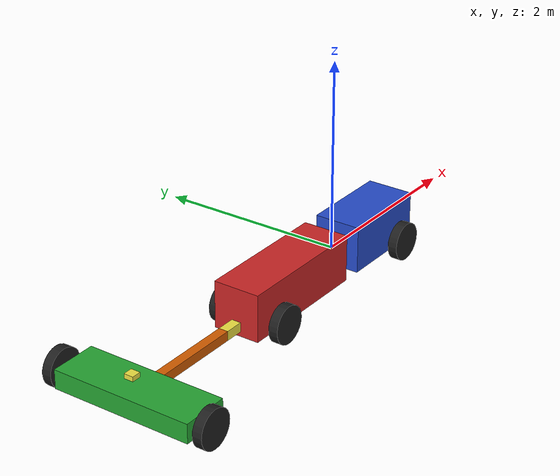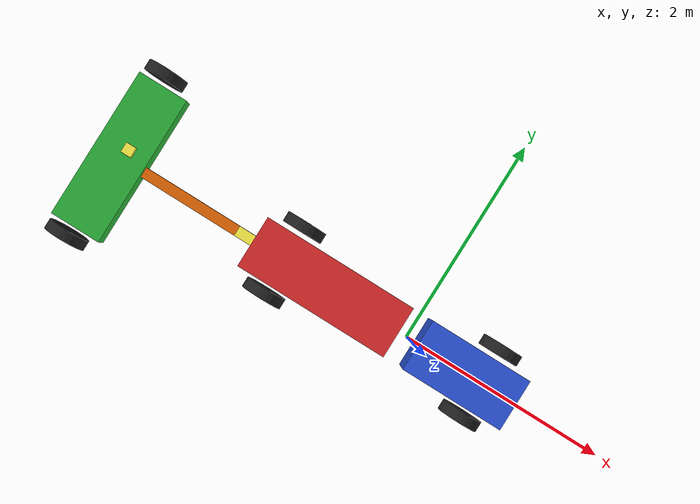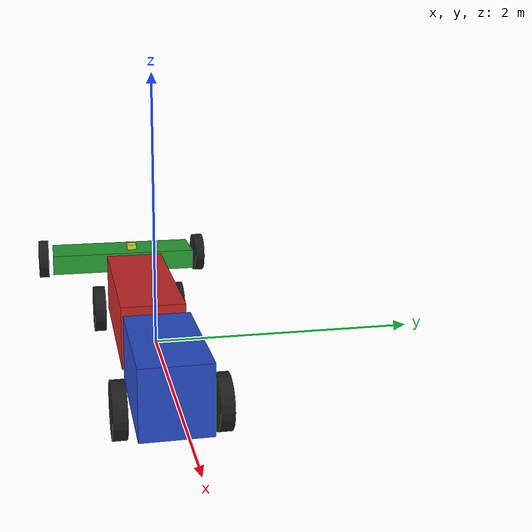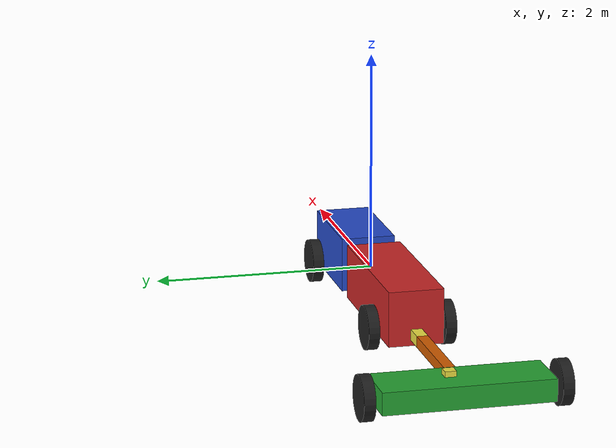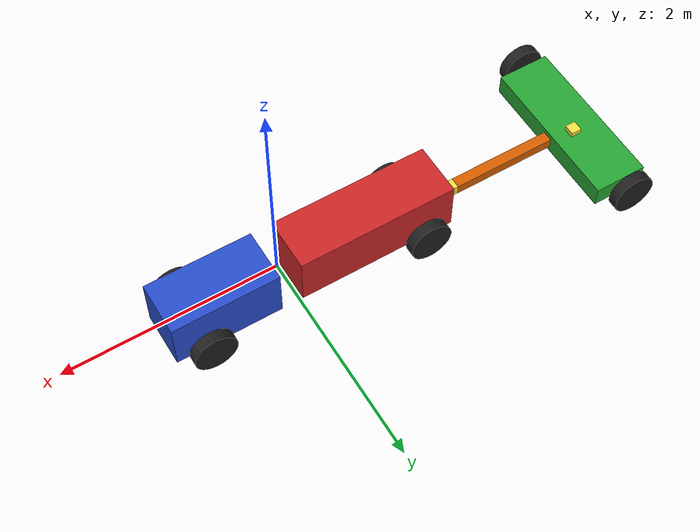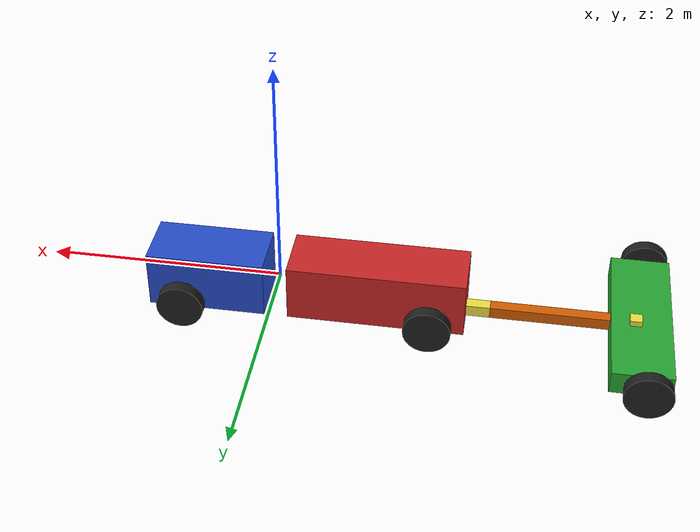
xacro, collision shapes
<?xml version="1.0" ?>
<robot name="tractor_trailer" xmlns:xacro="http://www.ros.org/wiki/xacro">

<!-- Included URDF/XACRO Files -->
<xacro:include filename="$(find articulated_tractor_trailer_description)/urdf/model_properties.xacro" />
<xacro:include filename="$(find articulated_tractor_trailer_description)/urdf/wheel.xacro" />
<xacro:include filename="$(find articulated_tractor_trailer_description)/urdf/inertial_macros.urdf.xacro" />
<xacro:include filename="$(find articulated_tractor_trailer_description)/urdf/steering.xacro" />

<xacro:arg name="load_trailer" default="true" />
<xacro:arg name="robot_namespace" default="/" />

<!-- base_link is at the center of the tractor-trailer chassis -->
<link name="base_link">
  <visual>
    <origin xyz="0 0 0" rpy="0 0 0" /> <!-- corro el eje del medio al borde de atrás -->
    <geometry>
      <cylinder length="${articulation_cylinder_height}" radius="${articulation_cylinder_radius}"/>
    </geometry>
  </visual>
</link>

<!-- front_cradle is the front part of the tractor chassis -->
<link name="front_cradle">
  <visual>
    <origin xyz="${articulation_cylinder_radius + front_length/2} 0 0" rpy="0 0 0" /> <!-- corro el eje del medio al borde de atrás -->
    <geometry>
      <box size="${front_length} ${front_width} ${front_height}"/>
    </geometry>
  </visual>
  <collision>
    <origin xyz="${articulation_cylinder_radius + front_length/2} 0 0" rpy="0 0 0" />
    <geometry>
      <box size="${front_length} ${front_width} ${front_height}"/>
    </geometry>
  </collision>
  <xacro:cuboid_inertial mass="${front_part_mass}" x_length="${front_length}" y_width="${front_width}" z_height="${front_height}" xyz_origin="${front_length/2} 0 0" >
  </xacro:cuboid_inertial>
</link>

<!-- rear_cradle is the rear part of the tractor chassis-->
<link name="rear_cradle">
  <visual>
    <origin xyz="${-articulation_cylinder_radius -rear_length/2} 0 0" rpy="0 0 0" /> <!-- corro el eje del medio al borde de adelante -->
    <geometry>
       <box size="${rear_length} ${rear_width} ${rear_height}"/>
    </geometry>
  </visual>
   <collision>
    <origin xyz="${-articulation_cylinder_radius -rear_length/2} 0 0" rpy="0 0 0" />
    <geometry>
      <box size="${rear_length} ${rear_width} ${rear_height}"/>
    </geometry>
  </collision>
  <xacro:cuboid_inertial mass="${rear_part_mass}" x_length="${rear_length}" y_width="${rear_width}" z_height="${rear_height}" xyz_origin="${-rear_length/2} 0 0" >
  </xacro:cuboid_inertial>
</link>

<joint name="base_link__front_cradle_joint" type="revolute">
  <axis xyz="0 0 1" />
  <origin xyz="0 0 0" rpy="0 0 0" />
  <parent link="base_link" />
  <child link="front_cradle" />
  <limit effort="100.0" lower="-${M_PI/4}" upper="${M_PI/4}" velocity="1.0" />
</joint>

<transmission name="base_link__front_cradle__transmission" type="SimpleTransmission">
<type>transmission_interface/SimpleTransmission</type>
<actuator name="base_link__front_cradle__motor">
        <hardwareInterface>hardware_interface/PositionJointInterface</hardwareInterface>
	<mechanicalReduction>1</mechanicalReduction>
  <motorTorqueConstant>10000</motorTorqueConstant>
</actuator>
<joint name="base_link__front_cradle_joint">
	<hardwareInterface>hardware_interface/PositionJointInterface</hardwareInterface>
</joint>
</transmission>

<joint name="base_link__rear_cradle_joint" type="fixed">
  <origin xyz="0 0 0" rpy="0 0 0" />
  <parent link="base_link" />
  <child link="rear_cradle" />
</joint>

<link name="front_wheel_axle">
  <xacro:null_inertial/>
</link>

<link name="rear_wheel_axle">
  <xacro:null_inertial/>
</link>

<joint name="front_cradle__front_wheel_axle_joint" type="fixed">
  <origin xyz="${front_length-f_wheel_radius} 0 ${-f_wheel_vertical_offset}" rpy="0 0 0" />
  <parent link="front_cradle" />
  <child link="front_wheel_axle" />
</joint>

<joint name="rear_cradle__rear_wheel_axle_joint" type="fixed">
  <origin xyz="${-rear_length+r_wheel_radius} 0 ${-r_wheel_vertical_offset}" rpy="0 0 0" />
  <parent link="rear_cradle" />
  <child link="rear_wheel_axle" />
</joint>

<xacro:steering
   steering_prefix="front_right"
   parent_link="front_wheel_axle">
   <origin xyz="0 -${front_width/2+ f_wheel_length/2 + 0.05} 0" rpy="0 0 0" />
</xacro:steering>

<xacro:steering
   steering_prefix="front_left"
   parent_link="front_wheel_axle">
   <origin xyz="0 ${front_width/2+ f_wheel_length/2 + 0.05} 0" rpy="0 0 0" />
</xacro:steering>

<xacro:tt_wheel wheel_prefix="front_left"
   parent_link="front_left_ackermann_steering_link"
   roll = "${M_PI/2}"
   length = "${f_wheel_length}"
   radius= "${f_wheel_radius}"
   mass = "${f_wheel_mass}">
   <origin xyz="0 0 0" rpy="0 0 0" />
</xacro:tt_wheel>

<xacro:tt_wheel wheel_prefix="front_right"
   parent_link="front_right_ackermann_steering_link"
   roll = "${M_PI/2}"
   length = "${f_wheel_length}"
   radius= "${f_wheel_radius}"
   mass = "${f_wheel_mass}">
   <origin xyz="0 0 0" rpy="0 0 0" />
</xacro:tt_wheel>

<xacro:tt_wheel wheel_prefix="rear_left"
    parent_link="rear_wheel_axle"
    roll = "${M_PI/2}"
    length = "${r_wheel_length}"
    radius= "${r_wheel_radius}"
    mass = "${r_wheel_mass}">
    <origin xyz="0 ${rear_width/2+ r_wheel_length/2 + 0.05} 0" rpy="0 0 0" />
 </xacro:tt_wheel>

 <xacro:tt_wheel wheel_prefix="rear_right"
    parent_link="rear_wheel_axle"
    roll = "${M_PI/2}"
    length = "${r_wheel_length}"
    radius= "${r_wheel_radius}"
    mass = "${r_wheel_mass}">
    <origin xyz="0 -${rear_width/2+ r_wheel_length/2 + 0.05} 0" rpy="0 0 0" />
 </xacro:tt_wheel>

 <link name="rear_extension_hub">
   <visual>
     <origin xyz="${r_ext_length/2} 0 0" rpy="0 0 0" /> <!-- corro el eje del medio al borde de atras -->
     <geometry>
        <box size="${r_ext_length} ${r_ext_width} ${r_ext_height}"/>
     </geometry>
   </visual>
    <collision>
     <origin xyz="${r_ext_length/2} 0 0" rpy="0 0 0" />
     <geometry>
       <box size="${r_ext_length} ${r_ext_width} ${r_ext_height}"/>
     </geometry>
   </collision>
   <xacro:null_inertial />
 </link>

 <joint name="rear_wheel_axle__rear_extension_hub_joint" type="fixed">
   <origin xyz="${-r_ext_length} 0 0" rpy="0 0 0" />
   <parent link="rear_wheel_axle" />
   <child link="rear_extension_hub" />
 </joint>

 <xacro:if value="$(arg load_trailer)">
   <xacro:include filename="$(find articulated_tractor_trailer_description)/urdf/trailer.urdf.xacro" />
</xacro:if>

<xacro:include filename="$(find articulated_tractor_trailer_description)/urdf/articulated_tractor_trailer.gazebo" />

</robot>

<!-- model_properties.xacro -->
<robot xmlns:xacro="http://ros.org/wiki/xacro" name="model_properties">

  <xacro:property name="M_PI" value="3.14159"/>

  <!-- front chassis size (m) -->
  <xacro:property name="front_length" value="1.0"/>
  <xacro:property name="front_width" value="0.5"/>
  <xacro:property name="front_height" value="0.5"/>

  <!-- rear chassis size (m) -->
  <xacro:property name="rear_length" value="1.5"/>
  <xacro:property name="rear_width" value="0.5"/>
  <xacro:property name="rear_height" value="0.5"/>

  <xacro:property name="articulation_cylinder_radius" value="0.1"/>
  <xacro:property name="articulation_cylinder_height" value="0.5"/>

  <!-- trailer chassis size (m) -->
  <xacro:property name="trailer_length" value="0.5"/>
  <xacro:property name="trailer_width" value="1.5"/>
  <xacro:property name="trailer_height" value="0.2"/>

  <!-- rear and trailer extension hub size (m) -->
  <xacro:property name="r_ext_length" value="0.5"/>
  <xacro:property name="r_ext_width" value="0.1"/>
  <xacro:property name="r_ext_height" value="0.1"/>
  <xacro:property name="t_ext_length" value="1.0"/>
  <xacro:property name="t_ext_width" value="0.1"/>
  <xacro:property name="t_ext_height" value="0.1"/>

  <!-- front wheel properties (m) -->
  <xacro:property name="f_wheel_length" value="0.1"/>
  <xacro:property name="f_wheel_radius" value="0.2"/>
  <xacro:property name="f_wheel_vertical_offset" value="${front_height/2-f_wheel_radius/2}"/>

  <!-- rear wheel properties (m) -->
  <xacro:property name="r_wheel_length" value="0.1"/>
  <xacro:property name="r_wheel_radius" value="0.2"/>
  <xacro:property name="r_wheel_vertical_offset" value="${rear_height/2-r_wheel_radius/2}"/>

  <!-- trailer wheel properties (m) -->
  <xacro:property name="t_wheel_length" value="0.1"/>
  <xacro:property name="t_wheel_radius" value="0.2"/>
  <xacro:property name="t_wheel_vertical_offset" value="${trailer_height/2-t_wheel_radius/2}"/>

  <!-- mass properties (kg) -->
  <xacro:property name="front_part_mass" value="1.0"/>
  <xacro:property name="rear_part_mass" value="1.5"/>
  <xacro:property name="f_wheel_mass" value="1.0"/>
  <xacro:property name="r_wheel_mass" value="1.0"/>
  <xacro:property name="t_wheel_mass" value="1.0"/>
  <xacro:property name="trailer_mass" value="3.0"/>
  <xacro:property name="r_ext_mass" value="0.5" />
  <xacro:property name="t_ext_mass" value="0.5" />

</robot>

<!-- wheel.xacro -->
<robot xmlns:xacro="http://ros.org/wiki/xacro" name="wheel_macros">

<xacro:macro name="tt_wheel" params="wheel_prefix parent_link roll length radius mass *joint_pose">
    <link name="${wheel_prefix}_wheel_link">
        <xacro:cylinder_inertial mass="${mass}" radii="${radius}" height="${length}" >
        </xacro:cylinder_inertial>
	    <visual>
		    <origin xyz="0 0 0" rpy="${roll} 0 0" />
		    <geometry>
          <mesh filename="package://articulated_tractor_trailer_description/meshes/wheel_tractor.stl"/>
		    </geometry>
	    </visual>
	    <collision>
		    <origin xyz="0 0 0" rpy="${roll} 0 0" />
		    <geometry>
			    <cylinder length="${length}" radius="${radius}" />
		    </geometry>
	    </collision>
    </link>

   <joint name="${wheel_prefix}_wheel" type="continuous">
		<parent link="${parent_link}"/>
		<child link="${wheel_prefix}_wheel_link"/>
		<xacro:insert_block name="joint_pose"/>
		<axis xyz="0 1 0" rpy="0 0 0" />
	</joint>

   <transmission name="${wheel_prefix}_wheel_trans" type="SimpleTransmission">
		<type>transmission_interface/SimpleTransmission</type>
		<actuator name="${wheel_prefix}_wheel_motor">
            <hardwareInterface>hardware_interface/VelocityJointInterface</hardwareInterface>
			<mechanicalReduction>1</mechanicalReduction>
		</actuator>
		<joint name="${wheel_prefix}_wheel">
			<hardwareInterface>hardware_interface/VelocityJointInterface</hardwareInterface>
		</joint>
	</transmission>

    <gazebo reference="${wheel_prefix}_wheel_link">
        <material>Gazebo/Black</material>
        <selfCollide>false</selfCollide>
        <mu1 value="1.0"/>
        <mu2 value="1.0"/>
        <kp value="10000000.0" />
        <kd value="1.0" />
        <fdir1 value="1 0 0"/>
    </gazebo>
</xacro:macro>

<xacro:macro name="tt_wheel_no_trans" params="wheel_prefix parent_link roll length radius mass *joint_pose">
    <link name="${wheel_prefix}_wheel_link">
        <xacro:cylinder_inertial mass="${mass}" radii="${radius}" height="${length}" >
        </xacro:cylinder_inertial>
	    <visual>
		    <origin xyz="0 0 0" rpy="${roll} 0 0" />
		    <geometry>
          <mesh filename="package://articulated_tractor_trailer_description/meshes/wheel_tractor.stl"/>
		    </geometry>
	    </visual>
	    <collision>
		    <origin xyz="0 0 0" rpy="${roll} 0 0" />
		    <geometry>
			    <cylinder length="${length}" radius="${radius}" />
		    </geometry>
	    </collision>
    </link>

   <joint name="${wheel_prefix}_wheel" type="continuous">
		<parent link="${parent_link}"/>
		<child link="${wheel_prefix}_wheel_link"/>
		<xacro:insert_block name="joint_pose"/>
		<axis xyz="0 1 0" rpy="0 0 0" />
	</joint>

  <gazebo reference="${wheel_prefix}_wheel_link">
        <material>Gazebo/Black</material>
        <selfCollide>false</selfCollide>
        <mu1 value="1.0"/>
        <mu2 value="1.0"/>
        <kp value="10000000.0" />
        <kd value="1.0" />
        <fdir1 value="1 0 0"/>
    </gazebo>
</xacro:macro>

</robot>

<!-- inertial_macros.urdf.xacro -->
<robot xmlns:xacro="http://ros.org/wiki/xacro" name="inertial_macros">

<xacro:macro name="cuboid_inertial" params="mass x_length y_width z_height xyz_origin">
<inertial>
  <origin xyz="${xyz_origin}" rpy="0 0 0"/>
  <mass value="${mass}"/>
  <inertia
            ixx="${mass*(y_width*y_width + z_height*z_height)/12}"
            ixy="0.0"
            ixz="0.0"
            iyy="${mass*(x_length*x_length + z_height*z_height)/12}"
            iyz="0.0"
            izz="${mass*(x_length*x_length + y_width*y_width)/12}" />
</inertial>
</xacro:macro>

<xacro:macro name="cylinder_inertial" params="mass radii height">
<inertial>
  <mass value="${mass}"/>
  <inertia
            ixx="${mass*(3*radii*radii+height*height)/12}"
            ixy="0.0"
            ixz="0.0"
            iyy="${mass*radii*radii/2}"
            iyz="0.0"
            izz="${mass*(3*radii*radii+height*height)/12}" />
</inertial>
</xacro:macro>

<xacro:macro name="null_inertial">
  <inertial>
    <mass value="0.001"/>
    <inertia ixx="0.001" ixy="0" ixz="0" iyy="0.001" iyz="0" izz="0.001"/>
  </inertial>
</xacro:macro>

</robot>

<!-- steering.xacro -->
<robot xmlns:xacro="http://ros.org/wiki/xacro" name="steering_macro">
  <xacro:macro name="steering" params="steering_prefix parent_link *joint_pose">

    <link name="${steering_prefix}_ackermann_steering_link">
      <xacro:null_inertial/>
    </link>

    <joint name="${steering_prefix}_ackermann_steering_joint" type="revolute">
      <axis xyz="0 0 1" />
      <xacro:insert_block name="joint_pose"/>
      <parent link="${parent_link}" />
      <child link="${steering_prefix}_ackermann_steering_link" />
      <limit effort="1000000.0" lower="-${M_PI/4}" upper="${M_PI/4}" velocity="1.0" />
    </joint>

    <transmission name="${steering_prefix}_ackermann_steering_transmission" type="SimpleTransmission">
    <type>transmission_interface/SimpleTransmission</type>
    <actuator name="${steering_prefix}_ackermann_steering_motor">
            <hardwareInterface>hardware_interface/PositionJointInterface</hardwareInterface>
    	<mechanicalReduction>1</mechanicalReduction>
      <motorTorqueConstant>1580</motorTorqueConstant>
    </actuator>
    <joint name="${steering_prefix}_ackermann_steering_joint">
    	<hardwareInterface>hardware_interface/PositionJointInterface</hardwareInterface>
    </joint>
    </transmission>

  </xacro:macro>
</robot>

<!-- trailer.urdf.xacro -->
<robot xmlns:xacro="http://ros.org/wiki/xacro" name="trailer">

  <link name="trailer_cradle">
  <visual>
    <origin xyz="${-trailer_length/2} 0 0" rpy="0 0 0" />
    <geometry>
       <box size="${trailer_length} ${trailer_width} ${trailer_height}"/>
    </geometry>
  </visual>
   <collision>
    <origin xyz="${-trailer_length/2} 0 0" rpy="0 0 0" />
    <geometry>
      <box size="${trailer_length} ${trailer_width} ${trailer_height}"/>
    </geometry>
  </collision>
  <xacro:cuboid_inertial mass="${trailer_mass}" x_length="${trailer_length}" y_width="${trailer_width}" z_height="${trailer_height}" xyz_origin="${-trailer_length/2} 0 ${t_wheel_vertical_offset}" >
  </xacro:cuboid_inertial>
</link>

<joint name="trailer_extension_hub__trailer_cradle_joint" type="fixed">
  <origin xyz="${-t_ext_length} 0 0" rpy="0 0 0" />
  <parent link="trailer_extension_hub" />
  <child link="trailer_cradle" />
</joint>

<link name="trailer_extension_hub">
  <visual>
    <origin xyz="${-t_ext_length/2} 0 0" rpy="0 0 0" />
    <geometry>
       <box size="${t_ext_length} ${t_ext_width} ${t_ext_height}"/>
    </geometry>
  </visual>
   <collision>
    <origin xyz="${-t_ext_length/2} 0 0" rpy="0 0 0" />
    <geometry>
      <box size="${t_ext_length} ${t_ext_width} ${t_ext_height}"/>
    </geometry>
  </collision>
  <xacro:null_inertial />
</link>

<joint name="rear_extension_hub__trailer_extension_hub_joint" type="revolute">
 <axis xyz="0 0 1" />
 <origin xyz="0 0 0" rpy="0 0 0" />
 <parent link="rear_extension_hub" />
 <child link="trailer_extension_hub" />
 <limit effort="100.0" lower="-${M_PI/4}" upper="${M_PI/4}" velocity="0.5" />
 <dynamics damping="1.0" friction="1.0"/>
</joint>

<link name="trailer_wheel_axle">
<xacro:null_inertial/>
</link>

<joint name="trailer_cradle__trailer_wheel_axle_joint" type="fixed">
  <origin xyz="${-trailer_length+t_wheel_radius} 0 ${-t_wheel_vertical_offset}" rpy="0 0 0" />
  <parent link="trailer_cradle" />
  <child link="trailer_wheel_axle" />
</joint>

<xacro:tt_wheel_no_trans wheel_prefix="trailer_rear_right"
    parent_link="trailer_wheel_axle"
    roll = "${M_PI/2}"
    length = "${t_wheel_length}"
    radius= "${t_wheel_radius}"
    mass = "${t_wheel_mass}">
    <origin xyz="0 -${trailer_width/2+ t_wheel_length/2 + 0.05} 0" rpy="0 0 0" />
 </xacro:tt_wheel_no_trans>

 <xacro:tt_wheel_no_trans wheel_prefix="trailer_rear_left"
    parent_link="trailer_wheel_axle"
    roll = "${M_PI/2}"
    length = "${t_wheel_length}"
    radius= "${t_wheel_radius}"
    mass = "${t_wheel_mass}">
    <origin xyz="0 ${trailer_width/2+ t_wheel_length/2 + 0.05} 0" rpy="0 0 0" />
 </xacro:tt_wheel_no_trans>
</robot>

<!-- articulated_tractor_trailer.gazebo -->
<robot xmlns:xacro="http://ros.org/wiki/xacro" name="gazebo">

  <!--Add Gazebo ROS control plugin -->
 <gazebo>
   <plugin name="gazebo_ros_control" filename="libgazebo_ros_control.so">
     <robotNamespace>$(arg robot_namespace)</robotNamespace>
   </plugin>
 </gazebo>

  <link name="rear_p3d_link">
    <visual>
      <origin xyz="0 0 0" rpy="0 0 0" />
      <geometry>
        <box size="0.1 0.1 0.1" />
      </geometry>
    </visual>
     <collision>
      <origin xyz="0.1 0.1 0.1" rpy="0 0 0" />
      <geometry>
        <box size="0.1 0.1 0.1"/>
      </geometry>
    </collision>
    <xacro:null_inertial />
  </link>

  <joint name="rear_p3d_link_joint" type="revolute">
    <origin xyz="0 0 0" rpy="0 0 0" />
    <parent link="rear_wheel_axle" />
    <child link="rear_p3d_link" />
    <axis xyz="0 0 1" />
    <limit effort="1.0" lower="0" upper="0" velocity="1.0" />
  </joint>

<!-- Add ground_truth plugin for rear axle-->
 <gazebo>
     <plugin name="p3d_base_controller_rear_axle" filename="libgazebo_ros_p3d.so">
         <alwaysOn>true</alwaysOn>
         <updateRate>30.0</updateRate>
         <robotNamespace>$(arg robot_namespace)</robotNamespace>
         <bodyName>rear_p3d_link</bodyName>    <!--Cuerpo sobre el que se monta-->
         <link_name>rear_p3d_link</link_name>
         <frameId>rear_p3d_link</frameId>
         <topicName>ground_truth/rear_axle_state</topicName>
         <gaussianNoise>0</gaussianNoise>
         <frameName>world</frameName>    <!--Frame de referencia-->
         <xyzOffsets>0 0 0</xyzOffsets>
         <rpyOffsets>0 0 0</rpyOffsets>
     </plugin>
 </gazebo>

<!-- Add ground_truth plugin for front axle-->

<link name="front_p3d_link">
  <visual>
    <origin xyz="0 0 0" rpy="0 0 0" />
    <geometry>
      <box size="0.1 0.1 0.1" />
    </geometry>
  </visual>
   <collision>
    <origin xyz="0.1 0.1 0.1" rpy="0 0 0" />
    <geometry>
      <box size="0.1 0.1 0.1"/>
    </geometry>
  </collision>
  <xacro:null_inertial />
</link>

<joint name="front_p3d_link_joint" type="revolute">
  <origin xyz="0 0 0" rpy="0 0 0" />
  <parent link="front_wheel_axle" />
  <child link="front_p3d_link" />
  <axis xyz="0 0 1" />
  <limit effort="1.0" lower="0" upper="0" velocity="1.0" />
</joint>

<gazebo>
   <plugin name="p3d_base_controller_front_axle" filename="libgazebo_ros_p3d.so">
       <alwaysOn>true</alwaysOn>
       <updateRate>30.0</updateRate>
       <robotNamespace>$(arg robot_namespace)</robotNamespace>
       <bodyName>front_p3d_link</bodyName>    <!--Cuerpo sobre el que se monta-->
       <link_name>front_p3d_link</link_name>
       <frameId>front_p3d_link</frameId>
       <topicName>ground_truth/front_axle_state</topicName>
       <gaussianNoise>0</gaussianNoise>
       <frameName>world</frameName>    <!--Frame de referencia-->
       <xyzOffsets>0 0 0</xyzOffsets>
       <rpyOffsets>0 0 0</rpyOffsets>
   </plugin>
</gazebo>

<!-- Adding color to the chassis-->
  <gazebo reference="front_cradle">
    <material>Gazebo/Blue</material>
  </gazebo>
  <gazebo reference="rear_cradle">
    <material>Gazebo/Red</material>
  </gazebo>
  <gazebo reference="base_link">
    <material>Gazebo/White</material>
  </gazebo>

 <xacro:if value="$(arg load_trailer)">
   <!-- Add ground_truth plugin for trailer axle-->
   <link name="trailer_p3d_link">
     <visual>
       <origin xyz="0 0 0" rpy="0 0 0" />
       <geometry>
         <box size="0.1 0.1 0.1" />
       </geometry>
     </visual>
      <collision>
       <origin xyz="0.1 0.1 0.1" rpy="0 0 0" />
       <geometry>
         <box size="0.1 0.1 0.1"/>
       </geometry>
     </collision>
     <xacro:null_inertial />
   </link>

   <joint name="trailer_p3d_link_joint" type="revolute">
     <origin xyz="0 0 0" rpy="0 0 0" />
     <parent link="trailer_wheel_axle" />
     <child link="trailer_p3d_link" />
     <axis xyz="0 0 1" />
     <limit effort="1.0" lower="0" upper="0" velocity="1.0" />
   </joint>

   <gazebo>
       <plugin name="p3d_base_controller_trailer_axle" filename="libgazebo_ros_p3d.so">
           <alwaysOn>true</alwaysOn>
           <updateRate>30.0</updateRate>
           <robotNamespace>$(arg robot_namespace)</robotNamespace>
           <link_name>trailer_p3d_link</link_name>
           <bodyName>trailer_p3d_link</bodyName>    <!--Cuerpo sobre el que se monta-->
           <frameId>trailer_p3d_link</frameId>
           <topicName>ground_truth/trailer_axle_state</topicName>
           <gaussianNoise>0</gaussianNoise>
           <frameName>world</frameName>    <!--Frame de referencia-->
           <xyzOffsets>0 0 0</xyzOffsets>
           <rpyOffsets>0 0 0</rpyOffsets>
       </plugin>
   </gazebo>
    <gazebo reference="trailer_cradle">
      <material>Gazebo/Green</material>
    </gazebo>
 </xacro:if>
</robot>
